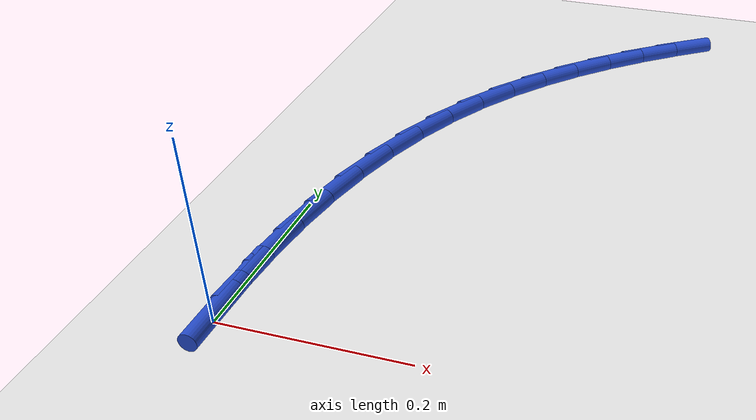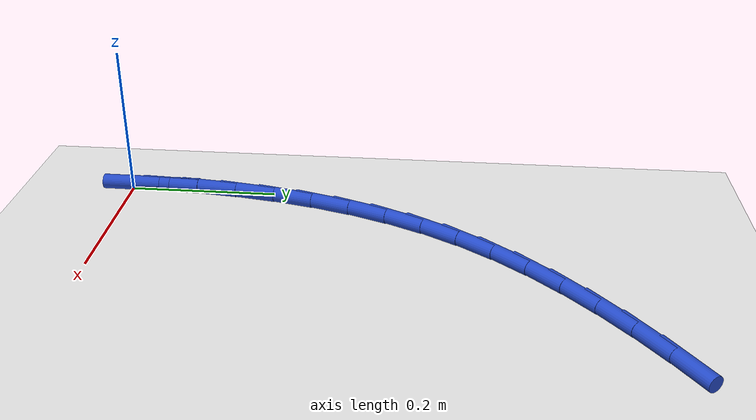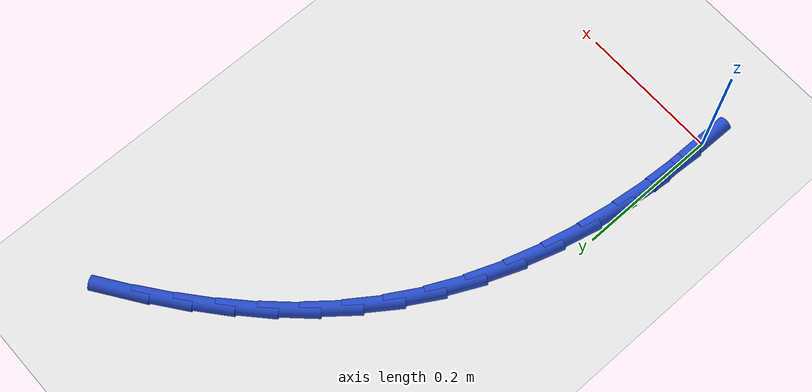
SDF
<sdf version="1.6">
 <world name="default">
  <model name="ground_plane">
   <static>1</static>
   <link name="link">
    <collision name="collision">
     <geometry><plane><normal>0 0 1</normal><size>100 100</size></plane></geometry>
     <surface><friction><ode><mu>100</mu><mu2>50</mu2></ode></friction></surface>
    </collision>
    <visual name="visual">
     <cast_shadows>0</cast_shadows>
     <geometry><plane><normal>0 0 1</normal><size>100 100</size></plane></geometry>
     <material>
      <script><uri>file://media/materials/scripts/gazebo.material</uri><name>Gazebo/WhiteGlow</name></script>
     </material>
    </visual>
   </link>
  </model>
  <model name="line">
   <link name="link_1">
    <pose>0.0008758087973025836 0.05527868987067464 0.01 0 1.57 1.5047198499125114</pose>
    <collision name="collision">
     <geometry><cylinder><radius>0.01</radius><length>0.08</length></cylinder></geometry>
    </collision>
    <visual name="visual">
     <material>
      <script><name>Gazebo/Blue</name><uri>file://media/materials/scripts/gazebo.material</uri></script>
     </material>
     <geometry><cylinder><radius>0.01</radius><length>0.08</length></cylinder></geometry>
    </visual>
   </link>
   <link name="link_2">
    <pose>0.004531912044155926 0.11052952795859491 0.01 0 1.57 1.4516111610505684</pose>
    <collision name="collision">
     <geometry><cylinder><radius>0.01</radius><length>0.08</length></cylinder></geometry>
    </collision>
    <visual name="visual">
     <material>
      <script><name>Gazebo/Blue</name><uri>file://media/materials/scripts/gazebo.material</uri></script>
     </material>
     <geometry><cylinder><radius>0.01</radius><length>0.08</length></cylinder></geometry>
    </visual>
   </link>
   <link name="link_3">
    <pose>0.011103140113664148 0.1654028297701363 0.01 0 1.57 1.3949423976622928</pose>
    <collision name="collision">
     <geometry><cylinder><radius>0.01</radius><length>0.08</length></cylinder></geometry>
    </collision>
    <visual name="visual">
     <material>
      <script><name>Gazebo/Blue</name><uri>file://media/materials/scripts/gazebo.material</uri></script>
     </material>
     <geometry><cylinder><radius>0.01</radius><length>0.08</length></cylinder></geometry>
    </visual>
   </link>
   <link name="link_4">
    <pose>0.0207243233789313 0.2195489108116741 0.01 0 1.57 1.334015802976964</pose>
    <collision name="collision">
     <geometry><cylinder><radius>0.01</radius><length>0.08</length></cylinder></geometry>
    </collision>
    <visual name="visual">
     <material>
      <script><name>Gazebo/Blue</name><uri>file://media/materials/scripts/gazebo.material</uri></script>
     </material>
     <geometry><cylinder><radius>0.01</radius><length>0.08</length></cylinder></geometry>
    </visual>
   </link>
   <link name="link_5">
    <pose>0.03353029221306147 0.272618086589584 0.01 0 1.57 1.2681359281461293</pose>
    <collision name="collision">
     <geometry><cylinder><radius>0.01</radius><length>0.08</length></cylinder></geometry>
    </collision>
    <visual name="visual">
     <material>
      <script><name>Gazebo/Blue</name><uri>file://media/materials/scripts/gazebo.material</uri></script>
     </material>
     <geometry><cylinder><radius>0.01</radius><length>0.08</length></cylinder></geometry>
    </visual>
   </link>
   <link name="link_6">
    <pose>0.04965587698915874 0.32426067261024116 0.01 0 1.57 1.1966417578673731</pose>
    <collision name="collision">
     <geometry><cylinder><radius>0.01</radius><length>0.08</length></cylinder></geometry>
    </collision>
    <visual name="visual">
     <material>
      <script><name>Gazebo/Blue</name><uri>file://media/materials/scripts/gazebo.material</uri></script>
     </material>
     <geometry><cylinder><radius>0.01</radius><length>0.08</length></cylinder></geometry>
    </visual>
   </link>
   <link name="link_7">
    <pose>0.06923590808032719 0.3741269843800211 0.01 0 1.57 1.1189622204853409</pose>
    <collision name="collision">
     <geometry><cylinder><radius>0.01</radius><length>0.08</length></cylinder></geometry>
    </collision>
    <visual name="visual">
     <material>
      <script><name>Gazebo/Blue</name><uri>file://media/materials/scripts/gazebo.material</uri></script>
     </material>
     <geometry><cylinder><radius>0.01</radius><length>0.08</length></cylinder></geometry>
    </visual>
   </link>
   <link name="link_8">
    <pose>0.09240521585967089 0.4218673374052993 0.01 0 1.57 1.0355023423104208</pose>
    <collision name="collision">
     <geometry><cylinder><radius>0.01</radius><length>0.08</length></cylinder></geometry>
    </collision>
    <visual name="visual">
     <material>
      <script><name>Gazebo/Blue</name><uri>file://media/materials/scripts/gazebo.material</uri></script>
     </material>
     <geometry><cylinder><radius>0.01</radius><length>0.08</length></cylinder></geometry>
    </visual>
   </link>
   <link name="link_9">
    <pose>0.11926956722975601 0.46716591893143583 0.01 0 1.57 0.9536512909180558</pose>
    <collision name="collision">
     <geometry><cylinder><radius>0.01</radius><length>0.08</length></cylinder></geometry>
    </collision>
    <visual name="visual">
     <material>
      <script><name>Gazebo/Blue</name><uri>file://media/materials/scripts/gazebo.material</uri></script>
     </material>
     <geometry><cylinder><radius>0.01</radius><length>0.08</length></cylinder></geometry>
    </visual>
   </link>
   <link name="link_10">
    <pose>0.14967324009707733 0.5100116660102791 0.01 0 1.57 0.8780551493363372</pose>
    <collision name="collision">
     <geometry><cylinder><radius>0.01</radius><length>0.08</length></cylinder></geometry>
    </collision>
    <visual name="visual">
     <material>
      <script><name>Gazebo/Blue</name><uri>file://media/materials/scripts/gazebo.material</uri></script>
     </material>
     <geometry><cylinder><radius>0.01</radius><length>0.08</length></cylinder></geometry>
    </visual>
   </link>
   <link name="link_11">
    <pose>0.18332217036943413 0.5505547450301503 0.01 0 1.57 0.8093055608791737</pose>
    <collision name="collision">
     <geometry><cylinder><radius>0.01</radius><length>0.08</length></cylinder></geometry>
    </collision>
    <visual name="visual">
     <material>
      <script><name>Gazebo/Blue</name><uri>file://media/materials/scripts/gazebo.material</uri></script>
     </material>
     <geometry><cylinder><radius>0.01</radius><length>0.08</length></cylinder></geometry>
    </visual>
   </link>
   <link name="link_12">
    <pose>0.21992103538364283 0.5889467891686792 0.01 0 1.57 0.7475975208602883</pose>
    <collision name="collision">
     <geometry><cylinder><radius>0.01</radius><length>0.08</length></cylinder></geometry>
    </collision>
    <visual name="visual">
     <material>
      <script><name>Gazebo/Blue</name><uri>file://media/materials/scripts/gazebo.material</uri></script>
     </material>
     <geometry><cylinder><radius>0.01</radius><length>0.08</length></cylinder></geometry>
    </visual>
   </link>
   <link name="link_13">
    <pose>0.2591745124765196 0.6253394316034943 0.01 0 1.57 0.6928571532560629</pose>
    <collision name="collision">
     <geometry><cylinder><radius>0.01</radius><length>0.08</length></cylinder></geometry>
    </collision>
    <visual name="visual">
     <material>
      <script><name>Gazebo/Blue</name><uri>file://media/materials/scripts/gazebo.material</uri></script>
     </material>
     <geometry><cylinder><radius>0.01</radius><length>0.08</length></cylinder></geometry>
    </visual>
   </link>
   <link name="link_14">
    <pose>0.3007872789848809 0.6598843055122251 0.01 0 1.57 0.6448359671258451</pose>
    <collision name="collision">
     <geometry><cylinder><radius>0.01</radius><length>0.08</length></cylinder></geometry>
    </collision>
    <visual name="visual">
     <material>
      <script><name>Gazebo/Blue</name><uri>file://media/materials/scripts/gazebo.material</uri></script>
     </material>
     <geometry><cylinder><radius>0.01</radius><length>0.08</length></cylinder></geometry>
    </visual>
   </link>
   <link name="link_15">
    <pose>0.3444640122455428 0.6927330440725009 0.01 0 1.57 0.6031913646656466</pose>
    <collision name="collision">
     <geometry><cylinder><radius>0.01</radius><length>0.08</length></cylinder></geometry>
    </collision>
    <visual name="visual">
     <material>
      <script><name>Gazebo/Blue</name><uri>file://media/materials/scripts/gazebo.material</uri></script>
     </material>
     <geometry><cylinder><radius>0.01</radius><length>0.08</length></cylinder></geometry>
    </visual>
   </link>
   <link name="link_140">
    <pose>1.0408340855860843e-17 1.1102230246251565e-16 0.01 0 1.57 1.555528872626233</pose>
    <collision name="collision">
     <geometry><cylinder><radius>0.01</radius><length>0.08</length></cylinder></geometry>
    </collision>
    <visual name="visual">
     <material>
      <script><name>Gazebo/Blue</name><uri>file://media/materials/scripts/gazebo.material</uri></script>
     </material>
     <geometry><cylinder><radius>0.01</radius><length>0.08</length></cylinder></geometry>
    </visual>
   </link>
   <link name="link_141">
    <pose>0.0008446253612694066 0.055317653152417746 0.01 0 1.57 1.5555288726262333</pose>
    <collision name="collision">
     <geometry><cylinder><radius>0.01</radius><length>0.08</length></cylinder></geometry>
    </collision>
    <visual name="visual">
     <material>
      <script><name>Gazebo/Blue</name><uri>file://media/materials/scripts/gazebo.material</uri></script>
     </material>
     <geometry><cylinder><radius>0.01</radius><length>0.08</length></cylinder></geometry>
    </visual>
   </link>
  </model>
 </world>
</sdf>
